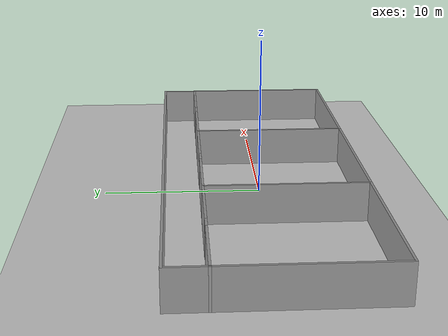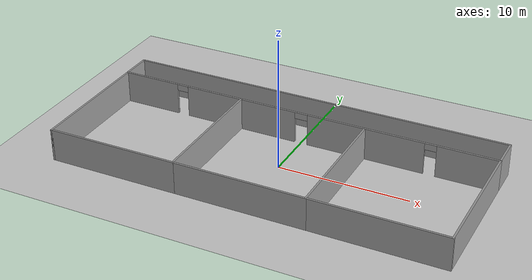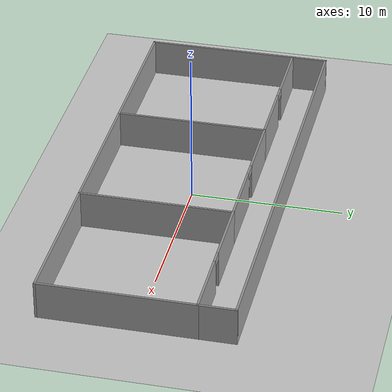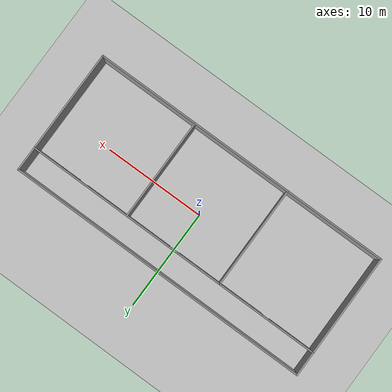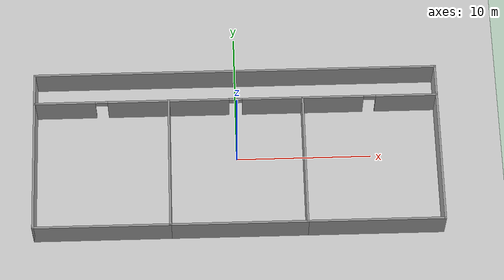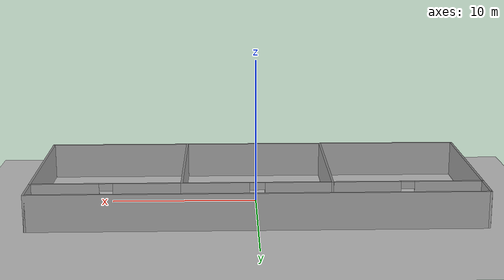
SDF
<sdf version="1.6">
 <world name="default">
  <light name="sun" type="directional">
   <pose>0 0 10 0 -0 0</pose>
   <diffuse>0.8 0.8 0.8 1</diffuse>
   <specular>0.2 0.2 0.2 1</specular>
   <attenuation>
    <range>1000</range>
    <constant>0.9</constant>
    <linear>0.01</linear>
    <quadratic>0.001</quadratic>
   </attenuation>
   <direction>-0.5 0.1 -0.9</direction>
  </light>
  <model name="ground_plane">
   <static>1</static>
   <link name="link">
    <collision name="collision">
     <geometry><plane><normal>0 0 1</normal><size>100 100</size></plane></geometry>
     <surface><friction><ode><mu>100</mu><mu2>50</mu2></ode></friction></surface>
    </collision>
    <visual name="visual">
     <cast_shadows>0</cast_shadows>
     <geometry><plane><normal>0 0 1</normal><size>100 100</size></plane></geometry>
     <material>
      <script><uri>file://media/materials/scripts/gazebo.material</uri><name>Gazebo/Grey</name></script>
     </material>
    </visual>
   </link>
  </model>
  <gravity>0 0 -9.8</gravity>
  <magnetic_field>6e-06 2.3e-05 -4.2e-05</magnetic_field>
  <atmosphere type="adiabatic"/>
  <physics name="default_physics" default="0" type="ode">
   <max_step_size>0.001</max_step_size>
   <real_time_factor>1</real_time_factor>
   <real_time_update_rate>1000</real_time_update_rate>
  </physics>
  <scene><ambient>0.4 0.4 0.4 1</ambient><background>0.7 0.7 0.7 1</background><shadows>1</shadows></scene>
  <spherical_coordinates>
   <surface_model>EARTH_WGS84</surface_model>
   <latitude_deg>0</latitude_deg>
   <longitude_deg>0</longitude_deg>
   <elevation>0</elevation>
   <heading_deg>0</heading_deg>
  </spherical_coordinates>
  <model name="Untitled">
   <link name="Wall_0">
    <pose>0 3.825 0 0 -0 0</pose>
    <visual name="Wall_0_Visual_0">
     <pose>-2.7875 0 1.25 0 -0 0</pose>
     <geometry><box><size>4.575 0.15 2.5</size></box></geometry>
     <material>
      <script><uri>file://media/materials/scripts/gazebo.material</uri><name>Gazebo/Grey</name></script>
      <ambient>1 1 1 1</ambient>
     </material>
     <meta><layer>0</layer></meta>
    </visual>
    <collision name="Wall_0_Collision_0">
     <geometry><box><size>4.575 0.15 2.5</size></box></geometry>
     <pose>-2.7875 0 1.25 0 -0 0</pose>
    </collision>
    <visual name="Wall_0_Visual_1">
     <pose>2.7875 0 1.25 0 -0 0</pose>
     <geometry><box><size>4.575 0.15 2.5</size></box></geometry>
     <material>
      <script><uri>file://media/materials/scripts/gazebo.material</uri><name>Gazebo/Grey</name></script>
      <ambient>1 1 1 1</ambient>
     </material>
     <meta><layer>0</layer></meta>
    </visual>
    <collision name="Wall_0_Collision_1">
     <geometry><box><size>4.575 0.15 2.5</size></box></geometry>
     <pose>2.7875 0 1.25 0 -0 0</pose>
    </collision>
    <visual name="Wall_0_Visual_2">
     <pose>0 0 2.25 0 -0 0</pose>
     <geometry><box><size>1 0.15 0.5</size></box></geometry>
     <material>
      <script><uri>file://media/materials/scripts/gazebo.material</uri><name>Gazebo/Grey</name></script>
      <ambient>1 1 1 1</ambient>
     </material>
     <meta><layer>0</layer></meta>
    </visual>
    <collision name="Wall_0_Collision_2">
     <geometry><box><size>1 0.15 0.5</size></box></geometry>
     <pose>0 0 2.25 0 -0 0</pose>
    </collision>
   </link>
   <link name="Wall_1">
    <collision name="Wall_1_Collision">
     <geometry><box><size>10.15 0.15 2.5</size></box></geometry>
     <pose>0 0 1.25 0 -0 0</pose>
    </collision>
    <visual name="Wall_1_Visual">
     <pose>0 0 1.25 0 -0 0</pose>
     <geometry><box><size>10.15 0.15 2.5</size></box></geometry>
     <material>
      <script><uri>file://media/materials/scripts/gazebo.material</uri><name>Gazebo/Grey</name></script>
      <ambient>1 1 1 1</ambient>
     </material>
     <meta><layer>0</layer></meta>
    </visual>
    <pose>5 -1.175 0 0 0 -1.5708</pose>
   </link>
   <link name="Wall_10">
    <collision name="Wall_10_Collision">
     <geometry><box><size>10.15 0.15 2.5</size></box></geometry>
     <pose>0 0 1.25 0 -0 0</pose>
    </collision>
    <visual name="Wall_10_Visual">
     <pose>0 0 1.25 0 -0 0</pose>
     <geometry><box><size>10.15 0.15 2.5</size></box></geometry>
     <material>
      <script><uri>file://media/materials/scripts/gazebo.material</uri><name>Gazebo/Grey</name></script>
      <ambient>1 1 1 1</ambient>
     </material>
     <meta><layer>0</layer></meta>
    </visual>
    <pose>15 -1.175 0 0 0 -1.5708</pose>
   </link>
   <link name="Wall_11">
    <collision name="Wall_11_Collision">
     <geometry><box><size>10.15 0.15 2.5</size></box></geometry>
     <pose>0 0 1.25 0 -0 0</pose>
    </collision>
    <visual name="Wall_11_Visual">
     <pose>0 0 1.25 0 -0 0</pose>
     <geometry><box><size>10.15 0.15 2.5</size></box></geometry>
     <material>
      <script><uri>file://media/materials/scripts/gazebo.material</uri><name>Gazebo/Grey</name></script>
      <ambient>1 1 1 1</ambient>
     </material>
     <meta><layer>0</layer></meta>
    </visual>
    <pose>10 -6.175 0 0 -0 3.14159</pose>
   </link>
   <link name="Wall_13">
    <pose>-10 3.825 0 0 -0 3.14159</pose>
    <visual name="Wall_13_Visual_0">
     <pose>-2.7625 0 1.25 0 -0 0</pose>
     <geometry><box><size>4.625 0.15 2.5</size></box></geometry>
     <material>
      <script><uri>file://media/materials/scripts/gazebo.material</uri><name>Gazebo/Grey</name></script>
      <ambient>1 1 1 1</ambient>
     </material>
     <meta><layer>0</layer></meta>
    </visual>
    <collision name="Wall_13_Collision_0">
     <geometry><box><size>4.625 0.15 2.5</size></box></geometry>
     <pose>-2.7625 0 1.25 0 -0 0</pose>
    </collision>
    <visual name="Wall_13_Visual_1">
     <pose>2.7625 0 1.25 0 -0 0</pose>
     <geometry><box><size>4.625 0.15 2.5</size></box></geometry>
     <material>
      <script><uri>file://media/materials/scripts/gazebo.material</uri><name>Gazebo/Grey</name></script>
      <ambient>1 1 1 1</ambient>
     </material>
     <meta><layer>0</layer></meta>
    </visual>
    <collision name="Wall_13_Collision_1">
     <geometry><box><size>4.625 0.15 2.5</size></box></geometry>
     <pose>2.7625 0 1.25 0 -0 0</pose>
    </collision>
    <visual name="Wall_13_Visual_2">
     <pose>0 0 2.25 0 -0 0</pose>
     <geometry><box><size>0.9 0.15 0.5</size></box></geometry>
     <material>
      <script><uri>file://media/materials/scripts/gazebo.material</uri><name>Gazebo/Grey</name></script>
      <ambient>1 1 1 1</ambient>
     </material>
     <meta><layer>0</layer></meta>
    </visual>
    <collision name="Wall_13_Collision_2">
     <geometry><box><size>0.9 0.15 0.5</size></box></geometry>
     <pose>0 0 2.25 0 -0 0</pose>
    </collision>
   </link>
   <link name="Wall_14">
    <collision name="Wall_14_Collision">
     <geometry><box><size>10.15 0.15 2.5</size></box></geometry>
     <pose>0 0 1.25 0 -0 0</pose>
    </collision>
    <visual name="Wall_14_Visual">
     <pose>0 0 1.25 0 -0 0</pose>
     <geometry><box><size>10.15 0.15 2.5</size></box></geometry>
     <material>
      <script><uri>file://media/materials/scripts/gazebo.material</uri><name>Gazebo/Grey</name></script>
      <ambient>1 1 1 1</ambient>
     </material>
     <meta><layer>0</layer></meta>
    </visual>
    <pose>-15 -1.175 0 0 0 -1.5708</pose>
   </link>
   <link name="Wall_15">
    <collision name="Wall_15_Collision">
     <geometry><box><size>10.15 0.15 2.5</size></box></geometry>
     <pose>0 0 1.25 0 -0 0</pose>
    </collision>
    <visual name="Wall_15_Visual">
     <pose>0 0 1.25 0 -0 0</pose>
     <geometry><box><size>10.15 0.15 2.5</size></box></geometry>
     <material>
      <script><uri>file://media/materials/scripts/gazebo.material</uri><name>Gazebo/Grey</name></script>
      <ambient>1 1 1 1</ambient>
     </material>
     <meta><layer>0</layer></meta>
    </visual>
    <pose>-10 -6.175 0 0 -0 0</pose>
   </link>
   <link name="Wall_2">
    <collision name="Wall_2_Collision">
     <geometry><box><size>10.15 0.15 2.5</size></box></geometry>
     <pose>0 0 1.25 0 -0 0</pose>
    </collision>
    <visual name="Wall_2_Visual">
     <pose>0 0 1.25 0 -0 0</pose>
     <geometry><box><size>10.15 0.15 2.5</size></box></geometry>
     <material>
      <script><uri>file://media/materials/scripts/gazebo.material</uri><name>Gazebo/Grey</name></script>
      <ambient>1 1 1 1</ambient>
     </material>
     <meta><layer>0</layer></meta>
    </visual>
    <pose>0 -6.175 0 0 -0 3.14159</pose>
   </link>
   <link name="Wall_27">
    <collision name="Wall_27_Collision">
     <geometry><box><size>2.5 0.15 2.5</size></box></geometry>
     <pose>0 0 1.25 0 -0 0</pose>
    </collision>
    <visual name="Wall_27_Visual">
     <pose>0 0 1.25 0 -0 0</pose>
     <geometry><box><size>2.5 0.15 2.5</size></box></geometry>
     <material>
      <script><uri>file://media/materials/scripts/gazebo.material</uri><name>Gazebo/Grey</name></script>
      <ambient>1 1 1 1</ambient>
     </material>
     <meta><layer>0</layer></meta>
    </visual>
    <pose>-15 5 0 0 -0 1.5708</pose>
   </link>
   <link name="Wall_28">
    <collision name="Wall_28_Collision">
     <geometry><box><size>30.15 0.15 2.5</size></box></geometry>
     <pose>0 0 1.25 0 -0 0</pose>
    </collision>
    <visual name="Wall_28_Visual">
     <pose>0 0 1.25 0 -0 0</pose>
     <geometry><box><size>30.15 0.15 2.5</size></box></geometry>
     <material>
      <script><uri>file://media/materials/scripts/gazebo.material</uri><name>Gazebo/Grey</name></script>
      <ambient>1 1 1 1</ambient>
     </material>
     <meta><layer>0</layer></meta>
    </visual>
    <pose>0 6.175 0 0 -0 0</pose>
   </link>
   <link name="Wall_29">
    <collision name="Wall_29_Collision">
     <geometry><box><size>2.5 0.15 2.5</size></box></geometry>
     <pose>0 0 1.25 0 -0 0</pose>
    </collision>
    <visual name="Wall_29_Visual">
     <pose>0 0 1.25 0 -0 0</pose>
     <geometry><box><size>2.5 0.15 2.5</size></box></geometry>
     <material>
      <script><uri>file://media/materials/scripts/gazebo.material</uri><name>Gazebo/Grey</name></script>
      <ambient>1 1 1 1</ambient>
     </material>
     <meta><layer>0</layer></meta>
    </visual>
    <pose>15 5 0 0 0 -1.5708</pose>
   </link>
   <link name="Wall_5">
    <collision name="Wall_5_Collision">
     <geometry><box><size>10.15 0.15 2.5</size></box></geometry>
     <pose>0 0 1.25 0 -0 0</pose>
    </collision>
    <visual name="Wall_5_Visual">
     <pose>0 0 1.25 0 -0 0</pose>
     <geometry><box><size>10.15 0.15 2.5</size></box></geometry>
     <material>
      <script><uri>file://media/materials/scripts/gazebo.material</uri><name>Gazebo/Grey</name></script>
      <ambient>1 1 1 1</ambient>
     </material>
     <meta><layer>0</layer></meta>
    </visual>
    <pose>-5 -1.175 0 0 0 -1.5708</pose>
   </link>
   <link name="Wall_9">
    <pose>10 3.825 0 0 -0 0</pose>
    <visual name="Wall_9_Visual_0">
     <pose>-2.7625 0 1.25 0 -0 0</pose>
     <geometry><box><size>4.625 0.15 2.5</size></box></geometry>
     <material>
      <script><uri>file://media/materials/scripts/gazebo.material</uri><name>Gazebo/Grey</name></script>
      <ambient>1 1 1 1</ambient>
     </material>
     <meta><layer>0</layer></meta>
    </visual>
    <collision name="Wall_9_Collision_0">
     <geometry><box><size>4.625 0.15 2.5</size></box></geometry>
     <pose>-2.7625 0 1.25 0 -0 0</pose>
    </collision>
    <visual name="Wall_9_Visual_1">
     <pose>2.7625 0 1.25 0 -0 0</pose>
     <geometry><box><size>4.625 0.15 2.5</size></box></geometry>
     <material>
      <script><uri>file://media/materials/scripts/gazebo.material</uri><name>Gazebo/Grey</name></script>
      <ambient>1 1 1 1</ambient>
     </material>
     <meta><layer>0</layer></meta>
    </visual>
    <collision name="Wall_9_Collision_1">
     <geometry><box><size>4.625 0.15 2.5</size></box></geometry>
     <pose>2.7625 0 1.25 0 -0 0</pose>
    </collision>
    <visual name="Wall_9_Visual_2">
     <pose>0 0 2.25 0 -0 0</pose>
     <geometry><box><size>0.9 0.15 0.5</size></box></geometry>
     <material>
      <script><uri>file://media/materials/scripts/gazebo.material</uri><name>Gazebo/Grey</name></script>
      <ambient>1 1 1 1</ambient>
     </material>
     <meta><layer>0</layer></meta>
    </visual>
    <collision name="Wall_9_Collision_2">
     <geometry><box><size>0.9 0.15 0.5</size></box></geometry>
     <pose>0 0 2.25 0 -0 0</pose>
    </collision>
   </link>
   <static>1</static>
  </model>
 </world>
</sdf>
